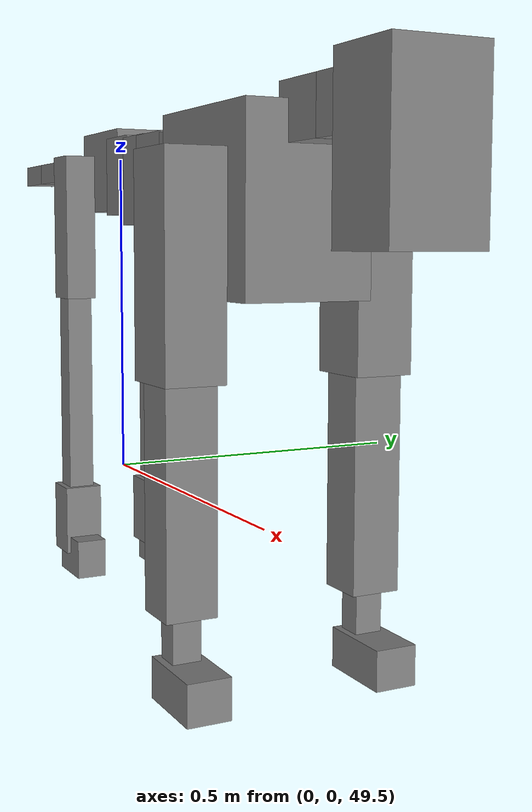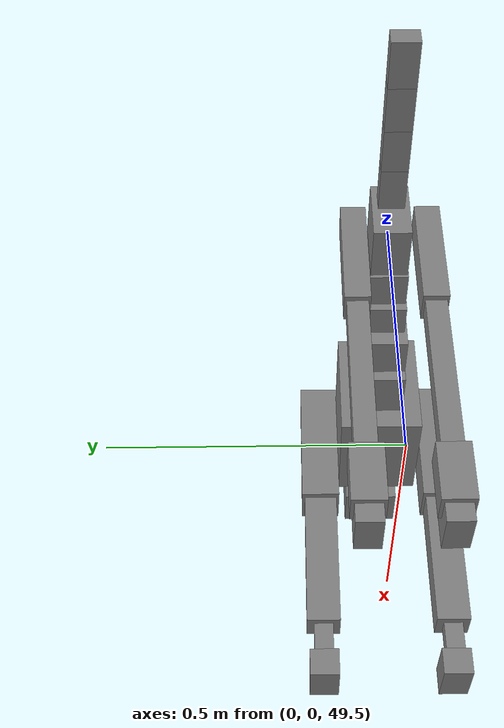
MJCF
<mujoco model="dog">

    <default>
        <joint armature="0.02" stiffness="1" damping="0.2" limited="true"/>
        <geom condim="3" friction="1 0.05 0.05" margin="0.01"/>
        <motor ctrllimited="true" ctrlrange="-1.0 1.0" forcelimited="true" gear="50"/>
    </default>

    <compiler inertiafromgeom="true" angle="radian"/>

    <option timestep="0.016" iterations="50" tolerance="1e-10" solver="Newton" jacobian="dense" cone="pyramidal"/>

    <size nconmax="20000" njmax="60000" nstack="5000000"/>
    <visual>
        <map force="0.1" zfar="30"/>
        <rgba haze="0.15 0.25 0.35 1"/>
        <quality shadowsize="2048"/>
        <global offwidth="800" offheight="800"/>
    </visual>

    <asset>
        <texture type="skybox" builtin="gradient" rgb1="0.3 0.5 0.7" rgb2="0 0 0" width="512" height="512"/>
        <texture name="texplane" type="2d" builtin="checker" rgb1=".2 .3 .4" rgb2=".1 0.15 0.2" width="512" height="512"
                 mark="cross" markrgb=".8 .8 .8"/>
        <texture name="texgeom" type="cube" builtin="flat" mark="cross" width="127" height="1278" rgb1="0.8 0.6 0.4"
                 rgb2="0.8 0.6 0.4" markrgb="1 1 1" random="0.01"/>

        <material name="matplane" reflectance="0.3" texture="texplane" texrepeat="1 1" texuniform="true"/>
        <material name="matgeom" texture="texgeom" texuniform="true" rgba="0.8 0.6 .4 1"/>
    </asset>

    <worldbody>
        <geom name="floor" pos="0 0 0" size="0 0 .25" type="plane" material="matplane" condim="3"/>

        <light directional="false" diffuse=".2 .2 .2" specular="0 0 0" pos="0 0 5" dir="0 0 -1" castshadow="false"/>
        <light mode="targetbodycom" target="torso" directional="false" diffuse=".8 .8 .8" specular="0.3 0.3 0.3"
               pos="0 0 4.0" dir="0 0 -1"/>

        <body name="root" pos="0 0 50">
            <freejoint name="root_1"/>
            <geom type="box" pos="0 0 -0.02" size="0.0774  0.0358  0.063" density="2030"/>

            <body name="spine1" pos="0.054 0 0">
                <joint name="spine1_y" axis="0 1 0" range="0 0.7" limited="true"/>
                <geom type="box" pos="0.02375 0 -0.03" size="0.04375  0.0375  0.05985" density="2030"/>

                <body name="spine2" pos="0.0612 0 0">
                    <joint name="spine2_y" axis="0 1 0" range="-0.15 0.15" limited="true"/>
                    <geom type="box" pos="0.03555  0  -0.04" size="0.04055  0.039  0.06615" density="2030"/>

                    <body name="spine3" pos="0.0730 0 0">
                        <joint name="spine3_y" axis="0 1 0" range="-0.15 0.15" limited="true"/>
                        <geom type="box" pos="0.03555  0  -0.057" size="0.04555  0.0445  0.081" density="2030"/>

                        <body name="spine4" pos="0.0780 0 0">
                            <joint name="spine4_y" axis="0 1 0" range="-0.15 0.15" limited="true"/>
                            <geom type="box" pos="0.05265  0  -0.07" size="0.05265  0.045  0.09135" density="2030"/>

                            <body name="torso" pos="0.1082 0 0">
                                <joint name="torso_y" axis="0 1 0" range="-0.15 0.15" limited="true"/>
                                <geom type="box" pos="0.11925  0  -0.085" size="0.11925  0.085  0.11745"
                                      density="2030"/>

                                <body name="neck1" pos="0.2160  0   0.0180">
                                    <joint name="neck1_y" axis="0 1 0" range="-1.2  -1" limited="true"/>
                                    <geom type="box" pos="0.0423  0  0" size="0.0423  0.03  0.036" density="2325"/>

                                    <body name="neck2" pos="0.0853  0  0">
                                        <joint name="neck2_y" axis="0 1 0" range="0.1  0" limited="true"/>
                                        <geom type="box" pos="0.0423  0  0" size="0.0423  0.03  0.036" density="2325"/>

                                        <body name="head" pos="0.0853  0  0">
                                            <joint name="head_y" axis="0 1 0" range="-0.3  -0.2" limited="true"/>
                                            <geom type="box" pos="0.0531  0  -0.055" size="0.0531  0.06  0.1044"
                                                  density="4030"/>

                                        </body>
                                    </body>
                                </body>

                                <body name="front_shoulder" pos="0.156  0   -0.0480">
                                    <joint name="front_shoulder_y" axis="0 1 0" range="-1 1.5" limited="true"/>
                                    <geom type="box" pos="0 0.13 -0.1128" size="0.0466  0.0398  0.1395" density="1158"/>
                                    <geom type="box" pos="0 -0.13 -0.1128" size="0.0466  0.0398  0.1395"
                                          density="1158"/>

                                    <body name="front_elbow" pos="0  0  -0.2256">
                                        <joint name="front_elbow_y" axis="0 1 0" range="-2 0" limited="true"/>
                                        <geom type="box" pos="0 0.13 -0.1555" size="0.0331  0.0338  0.1555"
                                              density="1081"/>
                                        <geom type="box" pos="0 -0.13 -0.1555" size="0.0331  0.0338  0.1555"
                                              density="1081"/>

                                        <body name="front_wrist" pos="0  0  -0.3109">
                                            <joint name="front_wrist_y" axis="0 1 0" range="-0.2 0" limited="true"/>
                                            <geom type="box" pos="0 0.13 -0.0360" size="0.0171  0.0190  0.0491"
                                                  density="1664"/>
                                            <geom type="box" pos="0 -0.13 -0.0360" size="0.0171  0.0190  0.0491"
                                                  density="1664"/>

                                            <body name="front_finger_end" pos="0  0  -0.0719">
                                                <joint name="front_finger_y" axis="0 1 0" range="-0.4 1"
                                                       limited="true"/>
                                                <geom type="box" pos="0.0290  0.13  -0.0117"
                                                      size="0.0532  0.0290  0.0267" density="1515"/>
                                                <geom type="box" pos="0.0290  -0.13  -0.0117"
                                                      size="0.0532  0.0290  0.0267" density="1515"/>

                                            </body>

                                        </body>
                                    </body>
                                </body>

                            </body>
                        </body>
                    </body>
                </body>
            </body>

            <body name="back_hip" pos="-0.03 0 -0.018">
                <joint name="back_hip_y" axis="0 1 0" range="-1.5 0.3" limited="true"/>
                <geom type="box" pos="0 0.07 -0.0910" size="0.0305  0.0239  0.1138" density="1154"/>
                <geom type="box" pos="0 -0.07 -0.0910" size="0.0305  0.0239  0.1138" density="1154"/>

                <body name="back_knee" pos="0  0  -0.1819">
                    <joint name="back_knee_y" axis="0 1 0" range="0 2.8" limited="true"/>
                    <geom type="box" pos="0 0.07 -0.1719" size="0.0201  0.0198  0.1874" density="1227"/>
                    <geom type="box" pos="0 -0.07 -0.1719" size="0.0201  0.0198  0.1874" density="1227"/>

                    <body name="back_ankle" pos="0  0  -0.3438">
                        <joint name="back_ankle_y" axis="0 1 0" range="-2.2 0" limited="true"/>
                        <geom type="box" pos="0 0.07 -0.0426" size="0.0293  0.0293  0.0539" density="1284"/>
                        <geom type="box" pos="0 -0.07 -0.0426" size="0.0293  0.0293  0.0539" density="1284"/>

                        <body name="back_toe_end" pos="0  0  -0.0853">
                            <joint name="back_toe_y" axis="0 1 0" range="-0.4 1" limited="true"/>
                            <geom type="box" pos="0.0232  0.07  -0.0150" size="0.0426  0.0232  0.0300" density="1515"/>
                            <geom type="box" pos="0.0232  -0.07  -0.0150" size="0.0426  0.0232  0.0300" density="1515"/>

                        </body>
                    </body>
                </body>
            </body>

            <body name="tail1" pos="-0.074 0 -0.006">
                <joint name="tail1_y" axis="0 1 0" range="-0.2 0.2" limited="true"/>
                <geom type="box" pos="-0.0536  0  0" size="0.045  0.025  0.0175" density="1587"/>

                <body name="tail2" pos="-0.09 0 0">
                    <joint name="tail2_y" axis="0 1 0" range="-0.2 0.2" limited="true"/>
                    <geom type="box" pos="-0.0536  0  0" size="0.045  0.025  0.0175" density="1587"/>

                    <body name="tail3" pos="-0.09 0 0">
                        <joint name="tail3_y" axis="0 1 0" range="-0.2 0.2" limited="true"/>
                        <geom type="box" pos="-0.0536  0  0" size="0.045  0.025  0.0175" density="1587"/>

                        <body name="tail4" pos="-0.09 0 0">
                            <joint name="tail4_y" axis="0 1 0" range="-0.2 0.2" limited="true"/>
                            <geom type="box" pos="-0.0536  0  0" size="0.045  0.025  0.0175" density="1587"/>

                        </body>
                    </body>
                </body>
            </body>
        </body>
    </worldbody>

    <actuator>
        <motor joint="spine1_y" forcerange="-150 150     "/>
        <motor joint="spine2_y" forcerange="-150 150     "/>
        <motor joint="spine3_y" forcerange="-150 150     "/>
        <motor joint="spine4_y" forcerange="-150 150     "/>
        <motor joint="torso_y" forcerange="-150 150     "/>
        <motor joint="neck1_y" forcerange="-100 100       "/>
        <motor joint="neck2_y" forcerange="-100 100       "/>
        <motor joint="head_y" forcerange="-150 150       "/>
        <motor joint="front_shoulder_y" forcerange="-181.07 184.46"/>
        <motor joint="front_elbow_y" forcerange="-170.25 175.77"/>
        <motor joint="front_wrist_y" forcerange="-69.03 82.68"/>
        <motor joint="front_finger_y" forcerange="-35.02 79.85"/>
        <motor joint="back_hip_y" forcerange="-269.51 249.37"/>
        <motor joint="back_knee_y" forcerange="-232.31 256.14"/>
        <motor joint="back_angle_y" forcerange="-177.29 192.27"/>
        <motor joint="back_toe_y" forcerange="-24.70 81.28"/>
        <motor joint="tail1_y" forcerange="-50 50     "/>
        <motor joint="tail2_y" forcerange="-50 50     "/>
        <motor joint="tail3_y" forcerange="-50 50     "/>
        <motor joint="tail4_y" forcerange="-50 50     "/>
    </actuator>
</mujoco>
